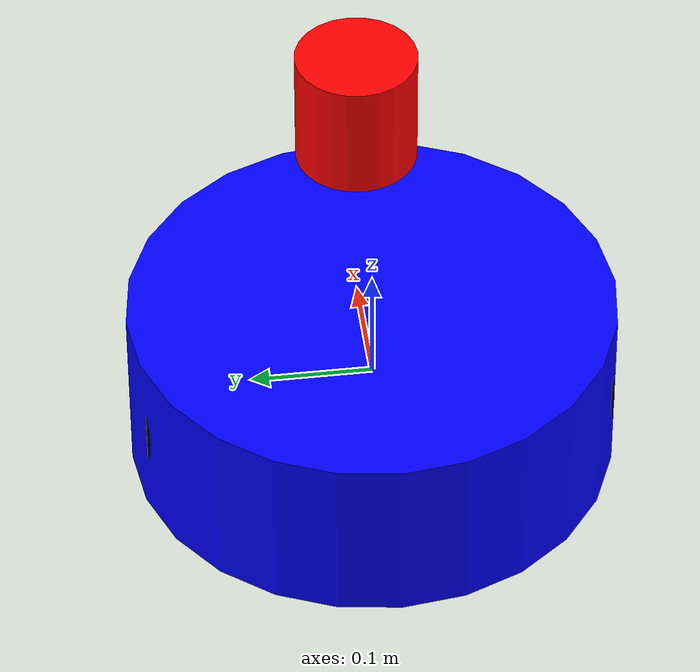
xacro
<?xml version="1.0"?>
<robot name="dashgo_d1" xmlns:xacro="http://www.ros.org/wiki/xacro">

  <!-- =========================================================
       机器人参数定义
    ========================================================== -->
  <xacro:property name="wheel_radius" value="0.0632"/>  <!-- 轮子半径 (m) -->
  <xacro:property name="wheel_length" value="0.04"/>     <!-- 轮子宽度 (m) -->
  <xacro:property name="wheel_base" value="0.3420"/>     <!-- 轮距 (m) -->

  <xacro:property name="base_radius" value="0.20"/>       <!-- 底盘半径 (m) -->
  <xacro:property name="base_height" value="0.15"/>       <!-- 底盘高度 (m) -->
  <xacro:property name="base_mass" value="5.0"/>          <!-- 底盘质量 (kg) -->

  <xacro:property name="laser_radius" value="0.05"/>      <!-- 雷达半径 (m) -->
  <xacro:property name="laser_height" value="0.10"/>      <!-- 雷达高度 (m) -->
  <xacro:property name="laser_mass" value="0.2"/>         <!-- 雷达质量 (kg) -->

  <!-- 雷达安装位置 -->
  <xacro:property name="laser_x" value="0.10"/>           <!-- 前方距离 (m) -->
  <xacro:property name="laser_y" value="0.0"/>            <!-- 左右偏移 (m) -->
  <xacro:property name="laser_z" value="0.20"/>           <!-- 高度 (m) -->

  <!-- 材料属性 -->
  <xacro:property name="wheel_mass" value="0.2"/>         <!-- 单个轮子质量 (kg) -->

  <!-- =========================================================
       基础链接（base_link）
    ========================================================== -->
  <link name="base_link">
    <visual>
      <geometry>
        <cylinder radius="${base_radius}" length="${base_height}"/>
      </geometry>
      <origin rpy="0 0 0" xyz="0 0 0"/>
      <material name="blue">
        <color rgba="0.0 0.0 1.0 1.0"/>
      </material>
    </visual>

    <collision>
      <origin xyz="0 0 0.05" rpy="0 0 0"/>
      <geometry>
        <cylinder length="0.10" radius="0.10"/>  <!-- 抬高5cm避免拖底，厚度减半，半径保持0.10避免水平碰撞 -->
      </geometry>
    </collision>

    <inertial>
      <origin xyz="0 0 0.05" rpy="0 0 0"/>  <!-- 🔥 修复：重心跟随碰撞体 -->
      <mass value="${base_mass}"/>
      <inertia ixx="0.05" ixy="0" ixz="0" iyy="0.05" iyz="0" izz="0.08"/>
    </inertial>
  </link>

  <!-- =========================================================
       万向轮定义（Caster Wheels）- Dashgo D1实机参数
       布局：1+2+1（前万向 + 中驱动 + 后万向）
    ========================================================== -->
  <xacro:property name="caster_radius" value="0.0127"/>   <!-- 1寸万向轮半径=12.7mm -->
  <xacro:property name="caster_mass" value="0.1"/>           <!-- 万向轮质量 -->

  <!-- 前万向轮 -->
  <link name="front_caster_link">
    <visual>
      <geometry>
        <sphere radius="${caster_radius}"/>
      </geometry>
      <origin rpy="0 0 0" xyz="0 0 0"/>
      <material name="gray">
        <color rgba="0.5 0.5 0.5 1.0"/>
      </material>
    </visual>

    <collision>
      <geometry>
        <sphere radius="${caster_radius}"/>
      </geometry>
      <origin rpy="0 0 0" xyz="0 0 0"/>
    </collision>

    <inertial>
      <mass value="${caster_mass}"/>
      <inertia ixx="0.00001" ixy="0" ixz="0" iyy="0.00001" iyz="0" izz="0.00001"/>
    </inertial>
  </link>

  <joint name="front_caster_joint" type="fixed">
    <parent link="base_link"/>
    <child link="front_caster_link"/>
    <!-- 前万向轮位置：底盘前方（假设1+2+1布局，前后对称） -->
    <origin xyz="0.15 0 -0.05" rpy="0 0 0"/>
  </joint>

  <!-- 后万向轮 -->
  <link name="rear_caster_link">
    <visual>
      <geometry>
        <sphere radius="${caster_radius}"/>
      </geometry>
      <origin rpy="0 0 0" xyz="0 0 0"/>
      <material name="gray">
        <color rgba="0.5 0.5 0.5 1.0"/>
      </material>
    </visual>

    <collision>
      <geometry>
        <sphere radius="${caster_radius}"/>
      </geometry>
      <origin rpy="0 0 0" xyz="0 0 0"/>
    </collision>

    <inertial>
      <mass value="${caster_mass}"/>
      <inertia ixx="0.00001" ixy="0" ixz="0" iyy="0.00001" iyz="0" izz="0.00001"/>
    </inertial>
  </link>

  <joint name="rear_caster_joint" type="fixed">
    <parent link="base_link"/>
    <child link="rear_caster_link"/>
    <!-- 后万向轮位置：底盘后方 -->
    <origin xyz="-0.15 0 -0.05" rpy="0 0 0"/>
  </joint>

  <!-- =========================================================
       驱动轮定义
    ========================================================== -->
  <xacro:macro name="wheel" params="prefix x_reflect y_reflect">
    <link name="${prefix}_wheel_link">
      <visual>
        <geometry>
          <cylinder radius="${wheel_radius}" length="${wheel_length}"/>
        </geometry>
        <origin rpy="${pi/2} 0 0" xyz="0 0 0"/>
        <material name="black">
          <color rgba="0.0 0.0 0.0 1.0"/>
        </material>
      </visual>

      <collision>
        <geometry>
          <cylinder radius="${wheel_radius}" length="${wheel_length}"/>
        </geometry>
        <origin rpy="${pi/2} 0 0" xyz="0 0 0"/>
      </collision>

      <inertial>
        <mass value="${wheel_mass}"/>
        <inertia ixx="0.0001" ixy="0" ixz="0" iyy="0.0001" iyz="0" izz="0.0001"/>
      </inertial>
    </link>

    <!-- 轮子关节 -->
    <joint name="${prefix}_wheel_joint" type="continuous">
      <parent link="base_link"/>
      <child link="${prefix}_wheel_link"/>
      <origin xyz="0 ${y_reflect * wheel_base/2} 0" rpy="0 0 0"/>
      <axis xyz="0 1 0"/>
    </joint>
  </xacro:macro>

  <!-- 左右轮子 -->
  <xacro:wheel prefix="left" x_reflect="1" y_reflect="1"/>
  <xacro:wheel prefix="right" x_reflect="1" y_reflect="-1"/>

  <!-- =========================================================
       雷达链接
    ========================================================== -->
  <link name="laser_link">
    <visual>
      <geometry>
        <cylinder radius="${laser_radius}" length="${laser_height}"/>
      </geometry>
      <origin rpy="0 0 0" xyz="0 0 0"/>
      <material name="red">
        <color rgba="1.0 0.0 0.0 1.0"/>
      </material>
    </visual>

    <collision>
      <geometry>
        <cylinder radius="${laser_radius}" length="${laser_height}"/>
      </geometry>
      <origin rpy="0 0 0" xyz="0 0 0"/>
    </collision>

    <inertial>
      <mass value="${laser_mass}"/>
      <inertia ixx="0.00001" ixy="0" ixz="0" iyy="0.00001" iyz="0" izz="0.00001"/>
    </inertial>
  </link>

  <!-- 雷达关节 -->
  <joint name="laser_joint" type="fixed">
    <parent link="base_link"/>
    <child link="laser_link"/>
    <origin xyz="${laser_x} ${laser_y} ${laser_z}" rpy="0 0 0"/>
  </joint>

  <!-- =========================================================
       Gazebo仿真插件（修复TF和控制）
    ========================================================== -->

  <!-- 差速驱动控制器（关键！修复odom→base_link TF） -->
  <gazebo>
    <plugin name="differential_drive_controller" filename="libgazebo_ros_diff_drive.so">
      <ros>
        <remapping>cmd_vel:=cmd_vel</remapping>
        <remapping>odom:=odom</remapping>
      </ros>
      <update_rate>50</update_rate>
      <left_joint>left_wheel_joint</left_joint>
      <right_joint>right_wheel_joint</right_joint>
      <wheel_separation>${wheel_base}</wheel_separation>
      <wheel_diameter>${2 * wheel_radius}</wheel_diameter>
      <max_wheel_acceleration>1.0</max_wheel_acceleration>
      <max_wheel_torque>20</max_wheel_torque>
      <command_topic>cmd_vel</command_topic>
      <publish_odom>true</publish_odom>
      <publish_odom_tf>true</publish_odom_tf>
      <publish_wheel_tf>true</publish_wheel_tf>
      <publish_wheel_joint_state>true</publish_wheel_joint_state>
      <odometry_topic>odom</odometry_topic>
      <odometry_frame>odom</odometry_frame>
      <robot_base_frame>base_link</robot_base_frame>
      <odometry_source>world</odometry_source>
      <covariance_x>0.0001</covariance_x>
      <covariance_y>0.0001</covariance_y>
      <covariance_yaw>0.01</covariance_yaw>
    </plugin>
  </gazebo>

  <!-- 雷达传感器插件（发布/scan数据） -->
  <gazebo reference="laser_link">
    <sensor type="ray" name="laser_sensor">
      <pose>0 0 0 0 0 0</pose>
      <always_on>true</always_on>
      <visualize>true</visualize>
      <update_rate>10</update_rate>
      <ray>
        <scan>
          <horizontal>
            <samples>360</samples>
            <resolution>1</resolution>
            <min_angle>-3.14159</min_angle>
            <max_angle>3.14159</max_angle>
          </horizontal>
        </scan>
        <range>
          <min>0.10</min>
          <max>12.0</max>
          <resolution>0.01</resolution>
        </range>
        <noise>
          <type>gaussian</type>
          <mean>0.0</mean>
          <stddev>0.01</stddev>
        </noise>
      </ray>
      <plugin name="laser_controller" filename="libgazebo_ros_ray_sensor.so">
        <ros>
          <remapping>~/out:=scan</remapping>
        </ros>
        <output_type>sensor_msgs/LaserScan</output_type>
        <frame_name>laser_link</frame_name>
      </plugin>
    </sensor>
  </gazebo>

  <!-- 轮子摩擦力属性（防止打滑和穿模） -->
  <gazebo reference="left_wheel_link">
    <mu1>1.0</mu1>
    <mu2>1.0</mu2>
    <kp>1000000.0</kp>
    <kd>100.0</kd>
    <minDepth>0.001</minDepth>
    <material>Gazebo/Black</material>
  </gazebo>

  <gazebo reference="right_wheel_link">
    <mu1>1.0</mu1>
    <mu2>1.0</mu2>
    <kp>1000000.0</kp>
    <kd>100.0</kd>
    <minDepth>0.001</minDepth>
    <material>Gazebo/Black</material>
  </gazebo>

  <!-- 万向轮摩擦力属性（低摩擦，便于转向） -->
  <gazebo reference="front_caster_link">
    <mu1>0.0</mu1>  <!-- 万向轮低摩擦 -->
    <mu2>0.0</mu2>
    <kp>1000000.0</kp>
    <kd>100.0</kd>
    <minDepth>0.001</minDepth>
    <material>Gazebo/Grey</material>
  </gazebo>

  <gazebo reference="rear_caster_link">
    <mu1>0.0</mu1>  <!-- 万向轮低摩擦 -->
    <mu2>0.0</mu2>
    <kp>1000000.0</kp>
    <kd>100.0</kd>
    <minDepth>0.001</minDepth>
    <material>Gazebo/Grey</material>
  </gazebo>

</robot>
